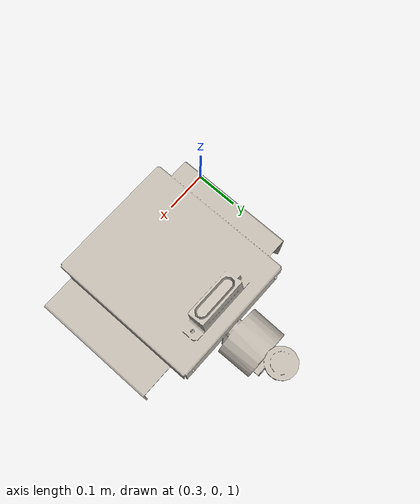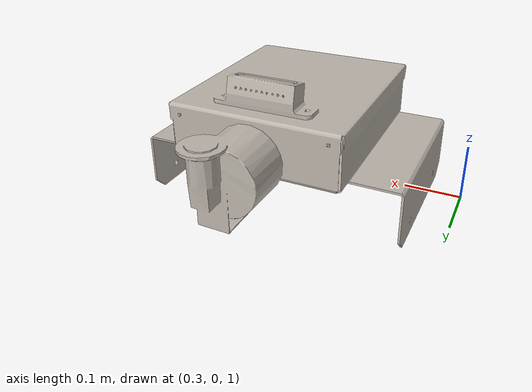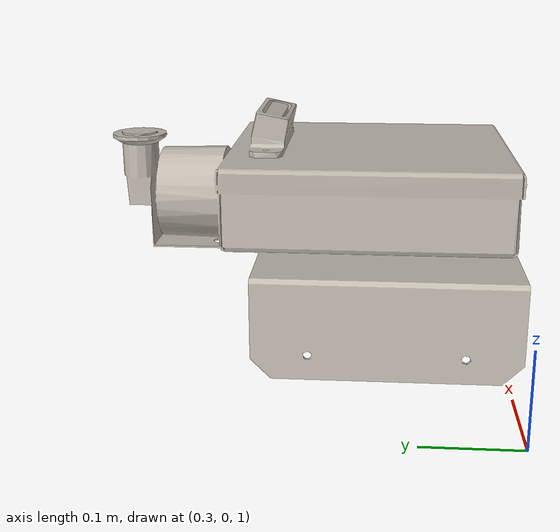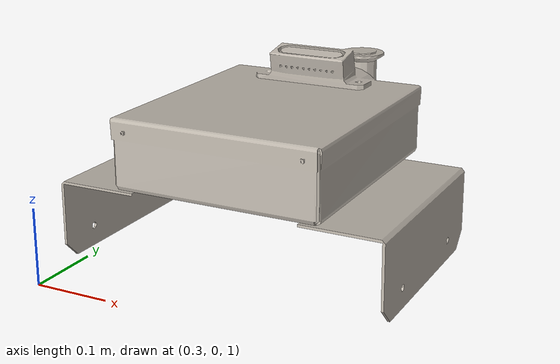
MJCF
<?xml version="1.0" encoding="utf-8"?>
<mujoco model="box">
  <compiler angle="radian" meshdir="assets" texturedir="assets" autolimits="true"/>

  <asset>
    <!-- Дайте явные имена -->
    <mesh    name="box_mesh" file="box.obj"/>
    <texture name="box_tex"  type="2d" file="box.png"/>
    <!-- Создаём ДВА материала: 'box' (чтобы удовлетворить старые ссылки) и 'box_orig' -->
    <material name="box"       specular="0.2" shininess="0.2" texture="box_tex"/>
    <material name="box_orig"  specular="0.2" shininess="0.2" texture="box_tex"/>
  </asset>

  <default>
    <default class="box">
      <default class="visual_box">
        <geom type="mesh" mass="5" contype="0" conaffinity="0" group="2"/>
      </default>
      <default class="collision_box">
        <geom type="mesh" mass="0" group="3" solimp="0.95 0.98 0.001" solref="0.004 1" friction="1.5"/>
      </default>
    </default>
  </default>

  <worldbody>
    <!-- Ставим на стол (z = 1.17 + 0.06 = 1.23), делаем подвижной -->
    <body name="box" childclass="box" pos="0.55 0.00 1.23">
      <freejoint/>
      <!-- Имя геома делаем просто 'mesh' на всякий случай; материал = 'box' -->
      <geom name="mesh"           class="visual_box"    type="mesh" mesh="box_mesh" material="box" euler="1.5708 0 0"/>
      <geom name="collider_orig"  class="collision_box" type="box"  size="0.125 0.1 0.06"/>
    </body>
  </worldbody>
</mujoco>
